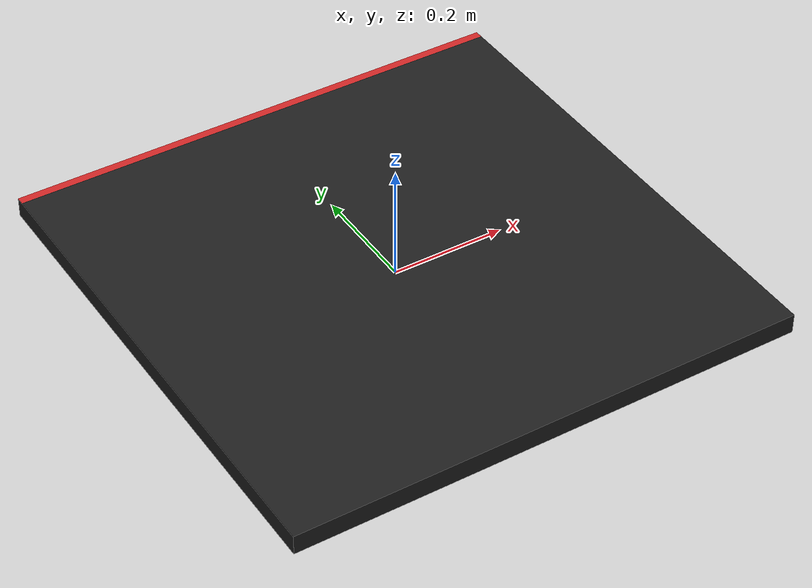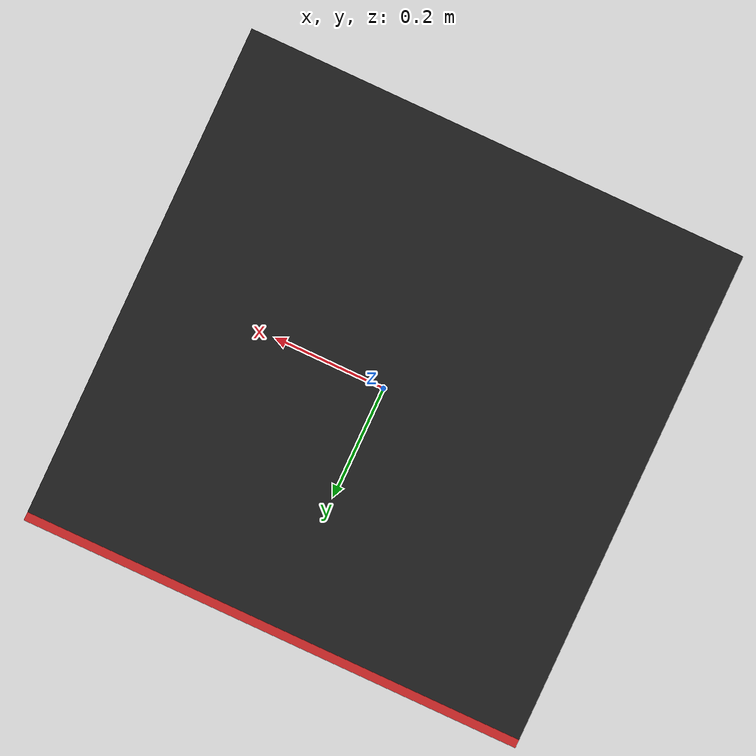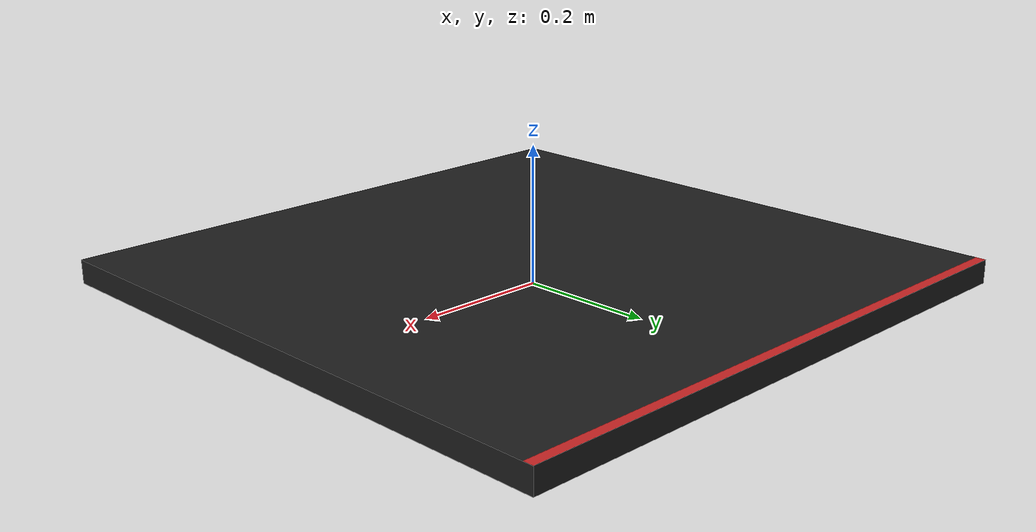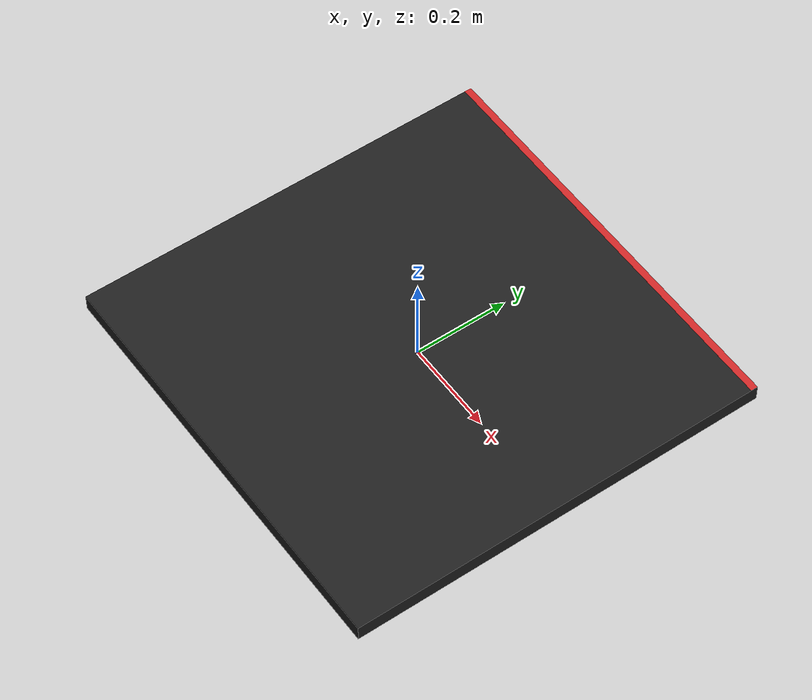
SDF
<?xml version="1.0" ?>
<sdf version="1.5">
  <model name="hac_i_panel">
    <static>true</static>
    <include>
      <uri>model://hac_black_panel</uri>
      <pose>0 0 0 0 0 0</pose>
    </include>

    <include>
      <uri>model://hac_red_tape</uri>
      <!-- panel half width (0.45) - tape half width (0.0075) = 0.04425 -->
      <pose>0 0.4425 0.035 0 0 0</pose>
    </include>

    <joint name="joint" type="fixed">
      <parent>hac_black_panel::link</parent>
      <child>hac_red_tape::link</child>
      <pose>0 0 0 0 0 0</pose>
    </joint>

  </model>
</sdf>

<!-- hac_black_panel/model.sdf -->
<sdf version="1.5">
  <model name="hac_black_panel">
    <link name="link">
      <pose>0 0 0.0175 0 0 0</pose>
      <inertial>
        <mass>10</mass>
        <inertia>
          <ixx>0.067602</ixx>
          <ixy>0</ixy>
          <ixz>0</ixz>
          <iyy>0.067602</iyy>
          <iyz>0</iyz>
          <izz>0.135</izz>
        </inertia>
      </inertial>

      <collision name='collision'>
        <geometry>
          <box>
            <size>0.9 0.9 0.035</size>
          </box>
        </geometry>
      </collision>

      <visual name='visual'>
        <geometry>
          <box>
            <size>0.9 0.9 0.035</size>
          </box>
        </geometry>
        <material>
          <script>
            <uri>file://media/materials/scripts/gazebo.material</uri>
            <name>Gazebo/Black</name>
          </script>
        </material>
      </visual>
    </link>

  </model>
</sdf>

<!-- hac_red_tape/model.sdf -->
<sdf version="1.5">
  <model name="hac_red_tape">
    <link name="link">
      <pose>0 0 0.00005 0 0 0</pose>
      <inertial>
        <mass>0.001</mass>
        <inertia>
          <ixx>1.8751e-8</ixx>
          <ixy>0</ixy>
          <ixz>0</ixz>
          <iyy>6.7500e-5</iyy>
          <iyz>0</iyz>
          <izz>6.7519e-5</izz>
        </inertia>
      </inertial>

      <collision name='collision'>
        <geometry>
          <box>
            <size>0.9 0.015 0.0001</size>
          </box>
        </geometry>
      </collision>

      <visual name='visual'>
        <geometry>
          <box>
            <size>0.9 0.015 0.0001</size>
          </box>
        </geometry>
        <material>
          <script>
            <uri>file://media/materials/scripts/gazebo.material</uri>
            <name>Gazebo/Red</name>
          </script>
        </material>
      </visual>
    </link>

  </model>
</sdf>
